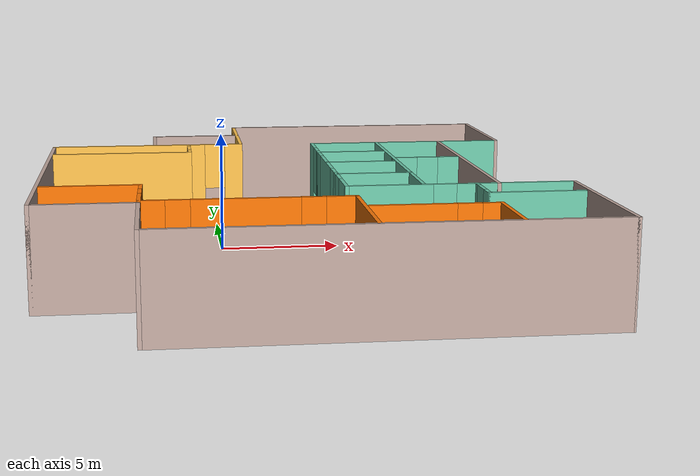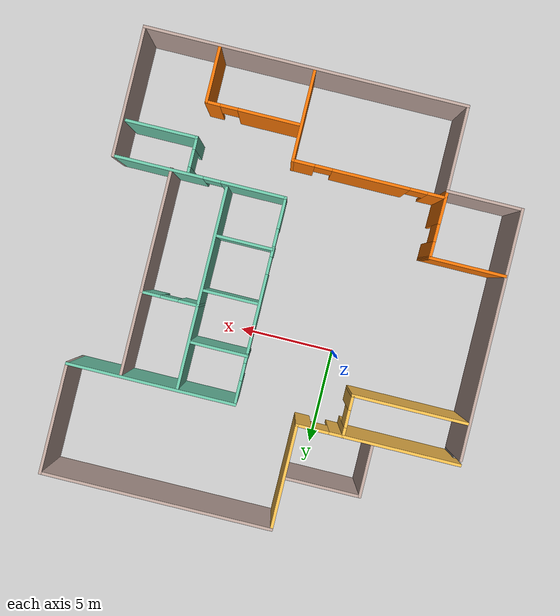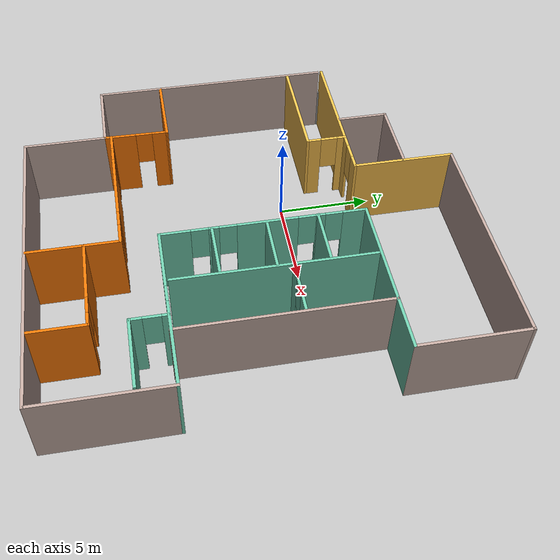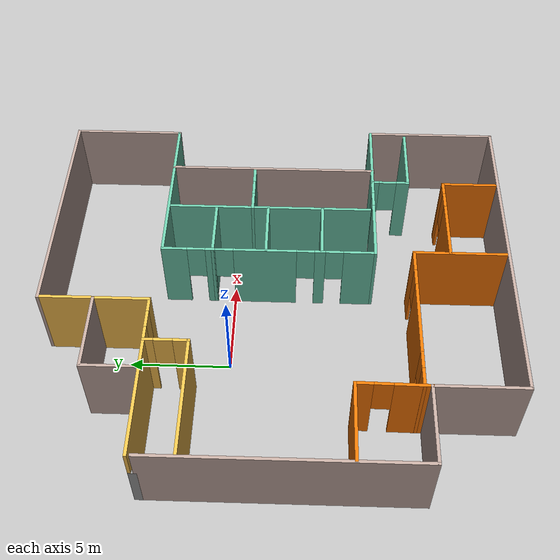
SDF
<?xml version='1.0'?>
<sdf version='1.6'>
  <model name='model'>
    <pose frame=''>2.952 -2.289 0 0 -0 0</pose>
    <link name='Wall_10'>
      <collision name='Wall_10_Collision'>
        <geometry>
          <box>
            <size>16.75 0.15 4</size>
          </box>
        </geometry>
        <pose frame=''>0 0 2 0 -0 0</pose>
      </collision>
      <visual name='Wall_10_Visual'>
        <pose frame=''>0 0 2 0 -0 0</pose>
        <geometry>
          <box>
            <size>16.75 0.15 4</size>
          </box>
        </geometry>
        <material>
          <script>
            <uri>file://media/materials/scripts/gazebo.material</uri>
            <name>Gazebo/Grey</name>
          </script>
          <ambient>0.760784 0.662745 0.627451 1</ambient>
        </material>
        <meta>
          <layer>0</layer>
        </meta>
      </visual>
      <pose frame=''>1.925 -11.4 0 0 -0 0</pose>
    </link>
    <link name='Wall_11'>
      <collision name='Wall_11_Collision'>
        <geometry>
          <box>
            <size>6.75 0.15 4</size>
          </box>
        </geometry>
        <pose frame=''>0 0 2 0 -0 0</pose>
      </collision>
      <visual name='Wall_11_Visual'>
        <pose frame=''>0 0 2 0 -0 0</pose>
        <geometry>
          <box>
            <size>6.75 0.15 4</size>
          </box>
        </geometry>
        <material>
          <script>
            <uri>file://media/materials/scripts/gazebo.material</uri>
            <name>Gazebo/Grey</name>
          </script>
          <ambient>0.760784 0.662745 0.627451 1</ambient>
        </material>
        <meta>
          <layer>0</layer>
        </meta>
      </visual>
      <pose frame=''>10.225 -8.1 0 0 -0 1.5708</pose>
    </link>
    <link name='Wall_12'>
      <pose frame=''>5.8 -4.8 0 0 -0 3.14159</pose>
      <visual name='Wall_12_Visual_0'>
        <pose frame=''>-2.14675 0 2 0 -0 0</pose>
        <geometry>
          <box>
            <size>4.70651 0.15 4</size>
          </box>
        </geometry>
        <material>
          <script>
            <uri>file://media/materials/scripts/gazebo.material</uri>
            <name>Gazebo/Grey</name>
          </script>
          <ambient>0.435294 0.796078 0.67451 1</ambient>
        </material>
        <meta>
          <layer>0</layer>
        </meta>
      </visual>
      <collision name='Wall_12_Collision_0'>
        <geometry>
          <box>
            <size>4.70651 0.15 4</size>
          </box>
        </geometry>
        <pose frame=''>-2.14675 0 2 0 -0 0</pose>
      </collision>
      <visual name='Wall_12_Visual_1'>
        <pose frame=''>2.80325 0 2 0 -0 0</pose>
        <geometry>
          <box>
            <size>3.39349 0.15 4</size>
          </box>
        </geometry>
        <material>
          <script>
            <uri>file://media/materials/scripts/gazebo.material</uri>
            <name>Gazebo/Grey</name>
          </script>
          <ambient>0.435294 0.796078 0.67451 1</ambient>
        </material>
        <meta>
          <layer>0</layer>
        </meta>
      </visual>
      <collision name='Wall_12_Collision_1'>
        <geometry>
          <box>
            <size>3.39349 0.15 4</size>
          </box>
        </geometry>
        <pose frame=''>2.80325 0 2 0 -0 0</pose>
      </collision>
      <visual name='Wall_12_Visual_2'>
        <pose frame=''>0.656507 0 3 0 -0 0</pose>
        <geometry>
          <box>
            <size>0.9 0.15 2</size>
          </box>
        </geometry>
        <material>
          <script>
            <uri>file://media/materials/scripts/gazebo.material</uri>
            <name>Gazebo/Grey</name>
          </script>
          <ambient>0.435294 0.796078 0.67451 1</ambient>
        </material>
        <meta>
          <layer>0</layer>
        </meta>
      </visual>
      <collision name='Wall_12_Collision_2'>
        <geometry>
          <box>
            <size>0.9 0.15 2</size>
          </box>
        </geometry>
        <pose frame=''>0.656507 0 3 0 -0 0</pose>
      </collision>
    </link>
    <link name='Wall_13'>
      <pose frame=''>1.375 0.5 0 0 -0 1.5708</pose>
      <visual name='Wall_13_Visual_0'>
        <pose frame=''>-4.54587 0 2 0 -0 0</pose>
        <geometry>
          <box>
            <size>1.65826 0.15 4</size>
          </box>
        </geometry>
        <material>
          <script>
            <uri>file://media/materials/scripts/gazebo.material</uri>
            <name>Gazebo/Grey</name>
          </script>
          <ambient>0.435294 0.796078 0.67451 1</ambient>
        </material>
        <meta>
          <layer>0</layer>
        </meta>
      </visual>
      <collision name='Wall_13_Collision_0'>
        <geometry>
          <box>
            <size>1.65826 0.15 4</size>
          </box>
        </geometry>
        <pose frame=''>-4.54587 0 2 0 -0 0</pose>
      </collision>
      <visual name='Wall_13_Visual_1'>
        <pose frame=''>-2.54891 0 2 0 -0 0</pose>
        <geometry>
          <box>
            <size>0.53565 0.15 4</size>
          </box>
        </geometry>
        <material>
          <script>
            <uri>file://media/materials/scripts/gazebo.material</uri>
            <name>Gazebo/Grey</name>
          </script>
          <ambient>0.435294 0.796078 0.67451 1</ambient>
        </material>
        <meta>
          <layer>0</layer>
        </meta>
      </visual>
      <collision name='Wall_13_Collision_1'>
        <geometry>
          <box>
            <size>0.53565 0.15 4</size>
          </box>
        </geometry>
        <pose frame=''>-2.54891 0 2 0 -0 0</pose>
      </collision>
      <visual name='Wall_13_Visual_2'>
        <pose frame=''>0.199333 0 2 0 -0 0</pose>
        <geometry>
          <box>
            <size>3.16084 0.15 4</size>
          </box>
        </geometry>
        <material>
          <script>
            <uri>file://media/materials/scripts/gazebo.material</uri>
            <name>Gazebo/Grey</name>
          </script>
          <ambient>0.435294 0.796078 0.67451 1</ambient>
        </material>
        <meta>
          <layer>0</layer>
        </meta>
      </visual>
      <collision name='Wall_13_Collision_2'>
        <geometry>
          <box>
            <size>3.16084 0.15 4</size>
          </box>
        </geometry>
        <pose frame=''>0.199333 0 2 0 -0 0</pose>
      </collision>
      <visual name='Wall_13_Visual_3'>
        <pose frame=''>2.92707 0 2 0 -0 0</pose>
        <geometry>
          <box>
            <size>0.494632 0.15 4</size>
          </box>
        </geometry>
        <material>
          <script>
            <uri>file://media/materials/scripts/gazebo.material</uri>
            <name>Gazebo/Grey</name>
          </script>
          <ambient>0.435294 0.796078 0.67451 1</ambient>
        </material>
        <meta>
          <layer>0</layer>
        </meta>
      </visual>
      <collision name='Wall_13_Collision_3'>
        <geometry>
          <box>
            <size>0.494632 0.15 4</size>
          </box>
        </geometry>
        <pose frame=''>2.92707 0 2 0 -0 0</pose>
      </collision>
      <visual name='Wall_13_Visual_4'>
        <pose frame=''>4.72469 0 2 0 -0 0</pose>
        <geometry>
          <box>
            <size>1.30062 0.15 4</size>
          </box>
        </geometry>
        <material>
          <script>
            <uri>file://media/materials/scripts/gazebo.material</uri>
            <name>Gazebo/Grey</name>
          </script>
          <ambient>0.435294 0.796078 0.67451 1</ambient>
        </material>
        <meta>
          <layer>0</layer>
        </meta>
      </visual>
      <collision name='Wall_13_Collision_4'>
        <geometry>
          <box>
            <size>1.30062 0.15 4</size>
          </box>
        </geometry>
        <pose frame=''>4.72469 0 2 0 -0 0</pose>
      </collision>
      <visual name='Wall_13_Visual_5'>
        <pose frame=''>-3.26674 0 3 0 -0 0</pose>
        <geometry>
          <box>
            <size>0.9 0.15 2</size>
          </box>
        </geometry>
        <material>
          <script>
            <uri>file://media/materials/scripts/gazebo.material</uri>
            <name>Gazebo/Grey</name>
          </script>
          <ambient>0.435294 0.796078 0.67451 1</ambient>
        </material>
        <meta>
          <layer>0</layer>
        </meta>
      </visual>
      <collision name='Wall_13_Collision_5'>
        <geometry>
          <box>
            <size>0.9 0.15 2</size>
          </box>
        </geometry>
        <pose frame=''>-3.26674 0 3 0 -0 0</pose>
      </collision>
      <visual name='Wall_13_Visual_6'>
        <pose frame=''>-1.83109 0 3 0 -0 0</pose>
        <geometry>
          <box>
            <size>0.9 0.15 2</size>
          </box>
        </geometry>
        <material>
          <script>
            <uri>file://media/materials/scripts/gazebo.material</uri>
            <name>Gazebo/Grey</name>
          </script>
          <ambient>0.435294 0.796078 0.67451 1</ambient>
        </material>
        <meta>
          <layer>0</layer>
        </meta>
      </visual>
      <collision name='Wall_13_Collision_6'>
        <geometry>
          <box>
            <size>0.9 0.15 2</size>
          </box>
        </geometry>
        <pose frame=''>-1.83109 0 3 0 -0 0</pose>
      </collision>
      <visual name='Wall_13_Visual_7'>
        <pose frame=''>2.22975 0 3 0 -0 0</pose>
        <geometry>
          <box>
            <size>0.9 0.15 2</size>
          </box>
        </geometry>
        <material>
          <script>
            <uri>file://media/materials/scripts/gazebo.material</uri>
            <name>Gazebo/Grey</name>
          </script>
          <ambient>0.435294 0.796078 0.67451 1</ambient>
        </material>
        <meta>
          <layer>0</layer>
        </meta>
      </visual>
      <collision name='Wall_13_Collision_7'>
        <geometry>
          <box>
            <size>0.9 0.15 2</size>
          </box>
        </geometry>
        <pose frame=''>2.22975 0 3 0 -0 0</pose>
      </collision>
      <visual name='Wall_13_Visual_8'>
        <pose frame=''>3.62439 0 3 0 -0 0</pose>
        <geometry>
          <box>
            <size>0.9 0.15 2</size>
          </box>
        </geometry>
        <material>
          <script>
            <uri>file://media/materials/scripts/gazebo.material</uri>
            <name>Gazebo/Grey</name>
          </script>
          <ambient>0.435294 0.796078 0.67451 1</ambient>
        </material>
        <meta>
          <layer>0</layer>
        </meta>
      </visual>
      <collision name='Wall_13_Collision_8'>
        <geometry>
          <box>
            <size>0.9 0.15 2</size>
          </box>
        </geometry>
        <pose frame=''>3.62439 0 3 0 -0 0</pose>
      </collision>
    </link>
    <link name='Wall_14'>
      <collision name='Wall_14_Collision'>
        <geometry>
          <box>
            <size>8.75 0.15 4</size>
          </box>
        </geometry>
        <pose frame=''>0 0 2 0 -0 0</pose>
      </collision>
      <visual name='Wall_14_Visual'>
        <pose frame=''>0 0 2 0 -0 0</pose>
        <geometry>
          <box>
            <size>8.75 0.15 4</size>
          </box>
        </geometry>
        <material>
          <script>
            <uri>file://media/materials/scripts/gazebo.material</uri>
            <name>Gazebo/Grey</name>
          </script>
          <ambient>0.435294 0.796078 0.67451 1</ambient>
        </material>
        <meta>
          <layer>0</layer>
        </meta>
      </visual>
      <pose frame=''>5.675 5.8 0 0 -0 0</pose>
    </link>
    <link name='Wall_15'>
      <collision name='Wall_15_Collision'>
        <geometry>
          <box>
            <size>5.75 0.15 4</size>
          </box>
        </geometry>
        <pose frame=''>0 0 2 0 -0 0</pose>
      </collision>
      <visual name='Wall_15_Visual'>
        <pose frame=''>0 0 2 0 -0 0</pose>
        <geometry>
          <box>
            <size>5.75 0.15 4</size>
          </box>
        </geometry>
        <material>
          <script>
            <uri>file://media/materials/scripts/gazebo.material</uri>
            <name>Gazebo/Grey</name>
          </script>
          <ambient>0.760784 0.662745 0.627451 1</ambient>
        </material>
        <meta>
          <layer>0</layer>
        </meta>
      </visual>
      <pose frame=''>9.975 8.6 0 0 -0 1.5708</pose>
    </link>
    <link name='Wall_16'>
      <collision name='Wall_16_Collision'>
        <geometry>
          <box>
            <size>12 0.15 4</size>
          </box>
        </geometry>
        <pose frame=''>0 0 2 0 -0 0</pose>
      </collision>
      <visual name='Wall_16_Visual'>
        <pose frame=''>0 0 2 0 -0 0</pose>
        <geometry>
          <box>
            <size>12 0.15 4</size>
          </box>
        </geometry>
        <material>
          <script>
            <uri>file://media/materials/scripts/gazebo.material</uri>
            <name>Gazebo/Grey</name>
          </script>
          <ambient>0.760784 0.662745 0.627451 1</ambient>
        </material>
        <meta>
          <layer>0</layer>
        </meta>
      </visual>
      <pose frame=''>4.05 11.4 0 0 -0 3.14159</pose>
    </link>
    <link name='Wall_17'>
      <collision name='Wall_17_Collision'>
        <geometry>
          <box>
            <size>5.5 0.15 4</size>
          </box>
        </geometry>
        <pose frame=''>0 0 2 0 -0 0</pose>
      </collision>
      <visual name='Wall_17_Visual'>
        <pose frame=''>0 0 2 0 -0 0</pose>
        <geometry>
          <box>
            <size>5.5 0.15 4</size>
          </box>
        </geometry>
        <material>
          <script>
            <uri>file://media/materials/scripts/gazebo.material</uri>
            <name>Gazebo/Grey</name>
          </script>
          <ambient>1 0.764706 0.305882 1</ambient>
        </material>
        <meta>
          <layer>0</layer>
        </meta>
      </visual>
      <pose frame=''>-1.875 8.725 0 0 0 -1.5708</pose>
    </link>
    <link name='Wall_18'>
      <pose frame=''>-6.05 6.05 0 0 -0 3.14159</pose>
      <visual name='Wall_18_Visual_0'>
        <pose frame=''>-3.84489 0 2 0 -0 0</pose>
        <geometry>
          <box>
            <size>0.810225 0.15 4</size>
          </box>
        </geometry>
        <material>
          <script>
            <uri>file://media/materials/scripts/gazebo.material</uri>
            <name>Gazebo/Grey</name>
          </script>
          <ambient>1 0.764706 0.305882 1</ambient>
        </material>
        <meta>
          <layer>0</layer>
        </meta>
      </visual>
      <collision name='Wall_18_Collision_0'>
        <geometry>
          <box>
            <size>0.810225 0.15 4</size>
          </box>
        </geometry>
        <pose frame=''>-3.84489 0 2 0 -0 0</pose>
      </collision>
      <visual name='Wall_18_Visual_1'>
        <pose frame=''>0.855112 0 2 0 -0 0</pose>
        <geometry>
          <box>
            <size>6.78977 0.15 4</size>
          </box>
        </geometry>
        <material>
          <script>
            <uri>file://media/materials/scripts/gazebo.material</uri>
            <name>Gazebo/Grey</name>
          </script>
          <ambient>1 0.764706 0.305882 1</ambient>
        </material>
        <meta>
          <layer>0</layer>
        </meta>
      </visual>
      <collision name='Wall_18_Collision_1'>
        <geometry>
          <box>
            <size>6.78977 0.15 4</size>
          </box>
        </geometry>
        <pose frame=''>0.855112 0 2 0 -0 0</pose>
      </collision>
      <visual name='Wall_18_Visual_2'>
        <pose frame=''>-2.98977 0 3 0 -0 0</pose>
        <geometry>
          <box>
            <size>0.9 0.15 2</size>
          </box>
        </geometry>
        <material>
          <script>
            <uri>file://media/materials/scripts/gazebo.material</uri>
            <name>Gazebo/Grey</name>
          </script>
          <ambient>1 0.764706 0.305882 1</ambient>
        </material>
        <meta>
          <layer>0</layer>
        </meta>
      </visual>
      <collision name='Wall_18_Collision_2'>
        <geometry>
          <box>
            <size>0.9 0.15 2</size>
          </box>
        </geometry>
        <pose frame=''>-2.98977 0 3 0 -0 0</pose>
      </collision>
    </link>
    <link name='Wall_19'>
      <collision name='Wall_19_Collision'>
        <geometry>
          <box>
            <size>0.4 0.15 2.5</size>
          </box>
        </geometry>
        <pose frame=''>0 0 1.25 0 -0 0</pose>
      </collision>
      <visual name='Wall_19_Visual'>
        <pose frame=''>0 0 1.25 0 -0 0</pose>
        <geometry>
          <box>
            <size>0.4 0.15 2.5</size>
          </box>
        </geometry>
        <material>
          <script>
            <uri>file://media/materials/scripts/gazebo.material</uri>
            <name>Gazebo/Grey</name>
          </script>
          <ambient>1 1 1 1</ambient>
        </material>
        <meta>
          <layer>0</layer>
        </meta>
      </visual>
      <pose frame=''>-10.225 5.925 0 0 0 -1.5708</pose>
    </link>
    <link name='Wall_21'>
      <collision name='Wall_21_Collision'>
        <geometry>
          <box>
            <size>2.75 0.15 4</size>
          </box>
        </geometry>
        <pose frame=''>0 0 2 0 -0 0</pose>
      </collision>
      <visual name='Wall_21_Visual'>
        <pose frame=''>0 0 2 0 -0 0</pose>
        <geometry>
          <box>
            <size>2.75 0.15 4</size>
          </box>
        </geometry>
        <material>
          <script>
            <uri>file://media/materials/scripts/gazebo.material</uri>
            <name>Gazebo/Grey</name>
          </script>
          <ambient>0.760784 0.662745 0.627451 1</ambient>
        </material>
        <meta>
          <layer>0</layer>
        </meta>
      </visual>
      <pose frame=''>-5.759 7.448 0 0 -0 1.5708</pose>
    </link>
    <link name='Wall_22'>
      <collision name='Wall_22_Collision'>
        <geometry>
          <box>
            <size>4 0.15 4</size>
          </box>
        </geometry>
        <pose frame=''>0 0 2 0 -0 0</pose>
      </collision>
      <visual name='Wall_22_Visual'>
        <pose frame=''>0 0 2 0 -0 0</pose>
        <geometry>
          <box>
            <size>4 0.15 4</size>
          </box>
        </geometry>
        <material>
          <script>
            <uri>file://media/materials/scripts/gazebo.material</uri>
            <name>Gazebo/Grey</name>
          </script>
          <ambient>0.760784 0.662745 0.627451 1</ambient>
        </material>
        <meta>
          <layer>0</layer>
        </meta>
      </visual>
      <pose frame=''>-3.834 8.748 0 0 -0 0</pose>
    </link>
    <link name='Wall_25'>
      <pose frame=''>-4.241 5.004 0 0 0 -1.5708</pose>
      <visual name='Wall_25_Visual_0'>
        <pose frame=''>-0.860425 0 2 0 -0 0</pose>
        <geometry>
          <box>
            <size>0.529151 0.15 4</size>
          </box>
        </geometry>
        <material>
          <script>
            <uri>file://media/materials/scripts/gazebo.material</uri>
            <name>Gazebo/Grey</name>
          </script>
          <ambient>1 0.764706 0.305882 1</ambient>
        </material>
        <meta>
          <layer>0</layer>
        </meta>
      </visual>
      <collision name='Wall_25_Collision_0'>
        <geometry>
          <box>
            <size>0.529151 0.15 4</size>
          </box>
        </geometry>
        <pose frame=''>-0.860425 0 2 0 -0 0</pose>
      </collision>
      <visual name='Wall_25_Visual_1'>
        <pose frame=''>0.714575 0 2 0 -0 0</pose>
        <geometry>
          <box>
            <size>0.820849 0.15 4</size>
          </box>
        </geometry>
        <material>
          <script>
            <uri>file://media/materials/scripts/gazebo.material</uri>
            <name>Gazebo/Grey</name>
          </script>
          <ambient>1 0.764706 0.305882 1</ambient>
        </material>
        <meta>
          <layer>0</layer>
        </meta>
      </visual>
      <collision name='Wall_25_Collision_1'>
        <geometry>
          <box>
            <size>0.820849 0.15 4</size>
          </box>
        </geometry>
        <pose frame=''>0.714575 0 2 0 -0 0</pose>
      </collision>
      <visual name='Wall_25_Visual_2'>
        <pose frame=''>-0.145849 0 3 0 -0 0</pose>
        <geometry>
          <box>
            <size>0.9 0.15 2</size>
          </box>
        </geometry>
        <material>
          <script>
            <uri>file://media/materials/scripts/gazebo.material</uri>
            <name>Gazebo/Grey</name>
          </script>
          <ambient>1 0.764706 0.305882 1</ambient>
        </material>
        <meta>
          <layer>0</layer>
        </meta>
      </visual>
      <collision name='Wall_25_Collision_2'>
        <geometry>
          <box>
            <size>0.9 0.15 2</size>
          </box>
        </geometry>
        <pose frame=''>-0.145849 0 3 0 -0 0</pose>
      </collision>
    </link>
    <link name='Wall_26'>
      <collision name='Wall_26_Collision'>
        <geometry>
          <box>
            <size>6 0.15 4</size>
          </box>
        </geometry>
        <pose frame=''>0 0 2 0 -0 0</pose>
      </collision>
      <visual name='Wall_26_Visual'>
        <pose frame=''>0 0 2 0 -0 0</pose>
        <geometry>
          <box>
            <size>6 0.15 4</size>
          </box>
        </geometry>
        <material>
          <script>
            <uri>file://media/materials/scripts/gazebo.material</uri>
            <name>Gazebo/Grey</name>
          </script>
          <ambient>1 0.764706 0.305882 1</ambient>
        </material>
        <meta>
          <layer>0</layer>
        </meta>
      </visual>
      <pose frame=''>-7.166 3.954 0 0 -0 3.14159</pose>
    </link>
    <link name='Wall_28'>
      <collision name='Wall_28_Collision'>
        <geometry>
          <box>
            <size>10.5 0.15 4</size>
          </box>
        </geometry>
        <pose frame=''>0 0 2 0 -0 0</pose>
      </collision>
      <visual name='Wall_28_Visual'>
        <pose frame=''>0 0 2 0 -0 0</pose>
        <geometry>
          <box>
            <size>10.5 0.15 4</size>
          </box>
        </geometry>
        <material>
          <script>
            <uri>file://media/materials/scripts/gazebo.material</uri>
            <name>Gazebo/Grey</name>
          </script>
          <ambient>0.435294 0.796078 0.67451 1</ambient>
        </material>
        <meta>
          <layer>0</layer>
        </meta>
      </visual>
      <pose frame=''>4.346 0.594 0 0 0 -1.5708</pose>
    </link>
    <link name='Wall_30'>
      <collision name='Wall_30_Collision'>
        <geometry>
          <box>
            <size>3 0.15 4</size>
          </box>
        </geometry>
        <pose frame=''>0 0 2 0 -0 0</pose>
      </collision>
      <visual name='Wall_30_Visual'>
        <pose frame=''>0 0 2 0 -0 0</pose>
        <geometry>
          <box>
            <size>3 0.15 4</size>
          </box>
        </geometry>
        <material>
          <script>
            <uri>file://media/materials/scripts/gazebo.material</uri>
            <name>Gazebo/Grey</name>
          </script>
          <ambient>0.435294 0.796078 0.67451 1</ambient>
        </material>
        <meta>
          <layer>0</layer>
        </meta>
      </visual>
      <pose frame=''>2.829 0.645 0 0 -0 0</pose>
    </link>
    <link name='Wall_32'>
      <collision name='Wall_32_Collision'>
        <geometry>
          <box>
            <size>3 0.15 4</size>
          </box>
        </geometry>
        <pose frame=''>0 0 2 0 -0 0</pose>
      </collision>
      <visual name='Wall_32_Visual'>
        <pose frame=''>0 0 2 0 -0 0</pose>
        <geometry>
          <box>
            <size>3 0.15 4</size>
          </box>
        </geometry>
        <material>
          <script>
            <uri>file://media/materials/scripts/gazebo.material</uri>
            <name>Gazebo/Grey</name>
          </script>
          <ambient>0.435294 0.796078 0.67451 1</ambient>
        </material>
        <meta>
          <layer>0</layer>
        </meta>
      </visual>
      <pose frame=''>2.782 3.302 0 0 -0 0</pose>
    </link>
    <link name='Wall_34'>
      <collision name='Wall_34_Collision'>
        <geometry>
          <box>
            <size>3 0.15 4</size>
          </box>
        </geometry>
        <pose frame=''>0 0 2 0 -0 0</pose>
      </collision>
      <visual name='Wall_34_Visual'>
        <pose frame=''>0 0 2 0 -0 0</pose>
        <geometry>
          <box>
            <size>3 0.15 4</size>
          </box>
        </geometry>
        <material>
          <script>
            <uri>file://media/materials/scripts/gazebo.material</uri>
            <name>Gazebo/Grey</name>
          </script>
          <ambient>0.435294 0.796078 0.67451 1</ambient>
        </material>
        <meta>
          <layer>0</layer>
        </meta>
      </visual>
      <pose frame=''>2.877 -2.153 0 0 -0 0</pose>
    </link>
    <link name='Wall_36'>
      <collision name='Wall_36_Collision'>
        <geometry>
          <box>
            <size>10.75 0.15 4</size>
          </box>
        </geometry>
        <pose frame=''>0 0 2 0 -0 0</pose>
      </collision>
      <visual name='Wall_36_Visual'>
        <pose frame=''>0 0 2 0 -0 0</pose>
        <geometry>
          <box>
            <size>10.75 0.15 4</size>
          </box>
        </geometry>
        <material>
          <script>
            <uri>file://media/materials/scripts/gazebo.material</uri>
            <name>Gazebo/Grey</name>
          </script>
          <ambient>0.760784 0.662745 0.627451 1</ambient>
        </material>
        <meta>
          <layer>0</layer>
        </meta>
      </visual>
      <pose frame=''>7.24 0.469 0 0 0 -1.5708</pose>
    </link>
    <link name='Wall_38'>
      <pose frame=''>5.771 1.452 0 0 -0 0</pose>
      <visual name='Wall_38_Visual_0'>
        <pose frame=''>-0.960605 0 2 0 -0 0</pose>
        <geometry>
          <box>
            <size>1.07879 0.15 4</size>
          </box>
        </geometry>
        <material>
          <script>
            <uri>file://media/materials/scripts/gazebo.material</uri>
            <name>Gazebo/Grey</name>
          </script>
          <ambient>0.435294 0.796078 0.67451 1</ambient>
        </material>
        <meta>
          <layer>0</layer>
        </meta>
      </visual>
      <collision name='Wall_38_Collision_0'>
        <geometry>
          <box>
            <size>1.07879 0.15 4</size>
          </box>
        </geometry>
        <pose frame=''>-0.960605 0 2 0 -0 0</pose>
      </collision>
      <visual name='Wall_38_Visual_1'>
        <pose frame=''>0.989395 0 2 0 -0 0</pose>
        <geometry>
          <box>
            <size>1.02121 0.15 4</size>
          </box>
        </geometry>
        <material>
          <script>
            <uri>file://media/materials/scripts/gazebo.material</uri>
            <name>Gazebo/Grey</name>
          </script>
          <ambient>0.435294 0.796078 0.67451 1</ambient>
        </material>
        <meta>
          <layer>0</layer>
        </meta>
      </visual>
      <collision name='Wall_38_Collision_1'>
        <geometry>
          <box>
            <size>1.02121 0.15 4</size>
          </box>
        </geometry>
        <pose frame=''>0.989395 0 2 0 -0 0</pose>
      </collision>
      <visual name='Wall_38_Visual_2'>
        <pose frame=''>0.02879 0 3 0 -0 0</pose>
        <geometry>
          <box>
            <size>0.9 0.15 2</size>
          </box>
        </geometry>
        <material>
          <script>
            <uri>file://media/materials/scripts/gazebo.material</uri>
            <name>Gazebo/Grey</name>
          </script>
          <ambient>0.435294 0.796078 0.67451 1</ambient>
        </material>
        <meta>
          <layer>0</layer>
        </meta>
      </visual>
      <collision name='Wall_38_Collision_2'>
        <geometry>
          <box>
            <size>0.9 0.15 2</size>
          </box>
        </geometry>
        <pose frame=''>0.02879 0 3 0 -0 0</pose>
      </collision>
    </link>
    <link name='Wall_40'>
      <collision name='Wall_40_Collision'>
        <geometry>
          <box>
            <size>4 0.15 4</size>
          </box>
        </geometry>
        <pose frame=''>0 0 2 0 -0 0</pose>
      </collision>
      <visual name='Wall_40_Visual'>
        <pose frame=''>0 0 2 0 -0 0</pose>
        <geometry>
          <box>
            <size>4 0.15 4</size>
          </box>
        </geometry>
        <material>
          <script>
            <uri>file://media/materials/scripts/gazebo.material</uri>
            <name>Gazebo/Grey</name>
          </script>
          <ambient>0.996078 0.47451 0.0196078 1</ambient>
        </material>
        <meta>
          <layer>0</layer>
        </meta>
      </visual>
      <pose frame=''>-8.246 -3.624 0 0 -0 0</pose>
    </link>
    <link name='Wall_41'>
      <pose frame=''>-6.348 -5.337 0 0 0 -1.58656</pose>
      <visual name='Wall_41_Visual_0'>
        <pose frame=''>-1.33557 0 2 0 -0 0</pose>
        <geometry>
          <box>
            <size>0.905514 0.15 4</size>
          </box>
        </geometry>
        <material>
          <script>
            <uri>file://media/materials/scripts/gazebo.material</uri>
            <name>Gazebo/Grey</name>
          </script>
          <ambient>0.996078 0.47451 0.0196078 1</ambient>
        </material>
        <meta>
          <layer>0</layer>
        </meta>
      </visual>
      <collision name='Wall_41_Collision_0'>
        <geometry>
          <box>
            <size>0.905514 0.15 4</size>
          </box>
        </geometry>
        <pose frame=''>-1.33557 0 2 0 -0 0</pose>
      </collision>
      <visual name='Wall_41_Visual_1'>
        <pose frame=''>0.902757 0 2 0 -0 0</pose>
        <geometry>
          <box>
            <size>1.77114 0.15 4</size>
          </box>
        </geometry>
        <material>
          <script>
            <uri>file://media/materials/scripts/gazebo.material</uri>
            <name>Gazebo/Grey</name>
          </script>
          <ambient>0.996078 0.47451 0.0196078 1</ambient>
        </material>
        <meta>
          <layer>0</layer>
        </meta>
      </visual>
      <collision name='Wall_41_Collision_1'>
        <geometry>
          <box>
            <size>1.77114 0.15 4</size>
          </box>
        </geometry>
        <pose frame=''>0.902757 0 2 0 -0 0</pose>
      </collision>
      <visual name='Wall_41_Visual_2'>
        <pose frame=''>-0.432815 0 3 0 -0 0</pose>
        <geometry>
          <box>
            <size>0.9 0.15 2</size>
          </box>
        </geometry>
        <material>
          <script>
            <uri>file://media/materials/scripts/gazebo.material</uri>
            <name>Gazebo/Grey</name>
          </script>
          <ambient>0.996078 0.47451 0.0196078 1</ambient>
        </material>
        <meta>
          <layer>0</layer>
        </meta>
      </visual>
      <collision name='Wall_41_Collision_2'>
        <geometry>
          <box>
            <size>0.9 0.15 2</size>
          </box>
        </geometry>
        <pose frame=''>-0.432815 0 3 0 -0 0</pose>
      </collision>
    </link>
    <link name='Wall_43'>
      <pose frame=''>6.386 -5.735 0 0 0 -1.5708</pose>
      <visual name='Wall_43_Visual_0'>
        <pose frame=''>-0.79399 0 2 0 -0 0</pose>
        <geometry>
          <box>
            <size>0.41202 0.15 4</size>
          </box>
        </geometry>
        <material>
          <script>
            <uri>file://media/materials/scripts/gazebo.material</uri>
            <name>Gazebo/Grey</name>
          </script>
          <ambient>0.435294 0.796078 0.67451 1</ambient>
        </material>
        <meta>
          <layer>0</layer>
        </meta>
      </visual>
      <collision name='Wall_43_Collision_0'>
        <geometry>
          <box>
            <size>0.41202 0.15 4</size>
          </box>
        </geometry>
        <pose frame=''>-0.79399 0 2 0 -0 0</pose>
      </collision>
      <visual name='Wall_43_Visual_1'>
        <pose frame=''>0.65601 0 2 0 -0 0</pose>
        <geometry>
          <box>
            <size>0.68798 0.15 4</size>
          </box>
        </geometry>
        <material>
          <script>
            <uri>file://media/materials/scripts/gazebo.material</uri>
            <name>Gazebo/Grey</name>
          </script>
          <ambient>0.435294 0.796078 0.67451 1</ambient>
        </material>
        <meta>
          <layer>0</layer>
        </meta>
      </visual>
      <collision name='Wall_43_Collision_1'>
        <geometry>
          <box>
            <size>0.68798 0.15 4</size>
          </box>
        </geometry>
        <pose frame=''>0.65601 0 2 0 -0 0</pose>
      </collision>
      <visual name='Wall_43_Visual_2'>
        <pose frame=''>-0.13798 0 3 0 -0 0</pose>
        <geometry>
          <box>
            <size>0.9 0.15 2</size>
          </box>
        </geometry>
        <material>
          <script>
            <uri>file://media/materials/scripts/gazebo.material</uri>
            <name>Gazebo/Grey</name>
          </script>
          <ambient>0.435294 0.796078 0.67451 1</ambient>
        </material>
        <meta>
          <layer>0</layer>
        </meta>
      </visual>
      <collision name='Wall_43_Collision_2'>
        <geometry>
          <box>
            <size>0.9 0.15 2</size>
          </box>
        </geometry>
        <pose frame=''>-0.13798 0 3 0 -0 0</pose>
      </collision>
    </link>
    <link name='Wall_44'>
      <collision name='Wall_44_Collision'>
        <geometry>
          <box>
            <size>3.75 0.15 4</size>
          </box>
        </geometry>
        <pose frame=''>0 0 2 0 -0 0</pose>
      </collision>
      <visual name='Wall_44_Visual'>
        <pose frame=''>0 0 2 0 -0 0</pose>
        <geometry>
          <box>
            <size>3.75 0.15 4</size>
          </box>
        </geometry>
        <material>
          <script>
            <uri>file://media/materials/scripts/gazebo.material</uri>
            <name>Gazebo/Grey</name>
          </script>
          <ambient>0.435294 0.796078 0.67451 1</ambient>
        </material>
        <meta>
          <layer>0</layer>
        </meta>
      </visual>
      <pose frame=''>8.186 -6.66 0 0 -0 0</pose>
    </link>
    <link name='Wall_47'>
      <pose frame=''>-2.451 -6.708 0 0 -0 0</pose>
      <visual name='Wall_47_Visual_0'>
        <pose frame=''>-3.49355 0 2 0 -0 0</pose>
        <geometry>
          <box>
            <size>1.0129 0.15 4</size>
          </box>
        </geometry>
        <material>
          <script>
            <uri>file://media/materials/scripts/gazebo.material</uri>
            <name>Gazebo/Grey</name>
          </script>
          <ambient>0.996078 0.47451 0.0196078 1</ambient>
        </material>
        <meta>
          <layer>0</layer>
        </meta>
      </visual>
      <collision name='Wall_47_Collision_0'>
        <geometry>
          <box>
            <size>1.0129 0.15 4</size>
          </box>
        </geometry>
        <pose frame=''>-3.49355 0 2 0 -0 0</pose>
      </collision>
      <visual name='Wall_47_Visual_1'>
        <pose frame=''>-0.096492 0 2 0 -0 0</pose>
        <geometry>
          <box>
            <size>3.98121 0.15 4</size>
          </box>
        </geometry>
        <material>
          <script>
            <uri>file://media/materials/scripts/gazebo.material</uri>
            <name>Gazebo/Grey</name>
          </script>
          <ambient>0.996078 0.47451 0.0196078 1</ambient>
        </material>
        <meta>
          <layer>0</layer>
        </meta>
      </visual>
      <collision name='Wall_47_Collision_1'>
        <geometry>
          <box>
            <size>3.98121 0.15 4</size>
          </box>
        </geometry>
        <pose frame=''>-0.096492 0 2 0 -0 0</pose>
      </collision>
      <visual name='Wall_47_Visual_2'>
        <pose frame=''>3.39706 0 2 0 -0 0</pose>
        <geometry>
          <box>
            <size>1.20589 0.15 4</size>
          </box>
        </geometry>
        <material>
          <script>
            <uri>file://media/materials/scripts/gazebo.material</uri>
            <name>Gazebo/Grey</name>
          </script>
          <ambient>0.996078 0.47451 0.0196078 1</ambient>
        </material>
        <meta>
          <layer>0</layer>
        </meta>
      </visual>
      <collision name='Wall_47_Collision_2'>
        <geometry>
          <box>
            <size>1.20589 0.15 4</size>
          </box>
        </geometry>
        <pose frame=''>3.39706 0 2 0 -0 0</pose>
      </collision>
      <visual name='Wall_47_Visual_3'>
        <pose frame=''>-2.5371 0 3 0 -0 0</pose>
        <geometry>
          <box>
            <size>0.9 0.15 2</size>
          </box>
        </geometry>
        <material>
          <script>
            <uri>file://media/materials/scripts/gazebo.material</uri>
            <name>Gazebo/Grey</name>
          </script>
          <ambient>0.996078 0.47451 0.0196078 1</ambient>
        </material>
        <meta>
          <layer>0</layer>
        </meta>
      </visual>
      <collision name='Wall_47_Collision_3'>
        <geometry>
          <box>
            <size>0.9 0.15 2</size>
          </box>
        </geometry>
        <pose frame=''>-2.5371 0 3 0 -0 0</pose>
      </collision>
      <visual name='Wall_47_Visual_4'>
        <pose frame=''>2.34411 0 3 0 -0 0</pose>
        <geometry>
          <box>
            <size>0.9 0.15 2</size>
          </box>
        </geometry>
        <material>
          <script>
            <uri>file://media/materials/scripts/gazebo.material</uri>
            <name>Gazebo/Grey</name>
          </script>
          <ambient>0.996078 0.47451 0.0196078 1</ambient>
        </material>
        <meta>
          <layer>0</layer>
        </meta>
      </visual>
      <collision name='Wall_47_Collision_4'>
        <geometry>
          <box>
            <size>0.9 0.15 2</size>
          </box>
        </geometry>
        <pose frame=''>2.34411 0 3 0 -0 0</pose>
      </collision>
    </link>
    <link name='Wall_48'>
      <collision name='Wall_48_Collision'>
        <geometry>
          <box>
            <size>4.75 0.15 4</size>
          </box>
        </geometry>
        <pose frame=''>0 0 2 0 -0 0</pose>
      </collision>
      <visual name='Wall_48_Visual'>
        <pose frame=''>0 0 2 0 -0 0</pose>
        <geometry>
          <box>
            <size>4.75 0.15 4</size>
          </box>
        </geometry>
        <material>
          <script>
            <uri>file://media/materials/scripts/gazebo.material</uri>
            <name>Gazebo/Grey</name>
          </script>
          <ambient>0.996078 0.47451 0.0196078 1</ambient>
        </material>
        <meta>
          <layer>0</layer>
        </meta>
      </visual>
      <pose frame=''>1.474 -9.008 0 0 0 -1.5708</pose>
    </link>
    <link name='Wall_5'>
      <collision name='Wall_5_Collision'>
        <geometry>
          <box>
            <size>13 0.15 4</size>
          </box>
        </geometry>
        <pose frame=''>0 0 2 0 -0 0</pose>
      </collision>
      <visual name='Wall_5_Visual'>
        <pose frame=''>0 0 2 0 -0 0</pose>
        <geometry>
          <box>
            <size>13 0.15 4</size>
          </box>
        </geometry>
        <material>
          <script>
            <uri>file://media/materials/scripts/gazebo.material</uri>
            <name>Gazebo/Grey</name>
          </script>
          <ambient>0.760784 0.662745 0.627451 1</ambient>
        </material>
        <meta>
          <layer>0</layer>
        </meta>
      </visual>
      <pose frame=''>-10.225 -0.625 0 0 0 -1.5708</pose>
    </link>
    <link name='Wall_50'>
      <pose frame=''>3.924 -8.51 0 0 -0 0</pose>
      <visual name='Wall_50_Visual_0'>
        <pose frame=''>-0.844745 0 2 0 -0 0</pose>
        <geometry>
          <box>
            <size>3.31051 0.15 4</size>
          </box>
        </geometry>
        <material>
          <script>
            <uri>file://media/materials/scripts/gazebo.material</uri>
            <name>Gazebo/Grey</name>
          </script>
          <ambient>0.996078 0.47451 0.0196078 1</ambient>
        </material>
        <meta>
          <layer>0</layer>
        </meta>
      </visual>
      <collision name='Wall_50_Collision_0'>
        <geometry>
          <box>
            <size>3.31051 0.15 4</size>
          </box>
        </geometry>
        <pose frame=''>-0.844745 0 2 0 -0 0</pose>
      </collision>
      <visual name='Wall_50_Visual_1'>
        <pose frame=''>2.10526 0 2 0 -0 0</pose>
        <geometry>
          <box>
            <size>0.789489 0.15 4</size>
          </box>
        </geometry>
        <material>
          <script>
            <uri>file://media/materials/scripts/gazebo.material</uri>
            <name>Gazebo/Grey</name>
          </script>
          <ambient>0.996078 0.47451 0.0196078 1</ambient>
        </material>
        <meta>
          <layer>0</layer>
        </meta>
      </visual>
      <collision name='Wall_50_Collision_1'>
        <geometry>
          <box>
            <size>0.789489 0.15 4</size>
          </box>
        </geometry>
        <pose frame=''>2.10526 0 2 0 -0 0</pose>
      </collision>
      <visual name='Wall_50_Visual_2'>
        <pose frame=''>1.26051 0 3 0 -0 0</pose>
        <geometry>
          <box>
            <size>0.9 0.15 2</size>
          </box>
        </geometry>
        <material>
          <script>
            <uri>file://media/materials/scripts/gazebo.material</uri>
            <name>Gazebo/Grey</name>
          </script>
          <ambient>0.996078 0.47451 0.0196078 1</ambient>
        </material>
        <meta>
          <layer>0</layer>
        </meta>
      </visual>
      <collision name='Wall_50_Collision_2'>
        <geometry>
          <box>
            <size>0.9 0.15 2</size>
          </box>
        </geometry>
        <pose frame=''>1.26051 0 3 0 -0 0</pose>
      </collision>
    </link>
    <link name='Wall_51'>
      <collision name='Wall_51_Collision'>
        <geometry>
          <box>
            <size>3 0.15 4</size>
          </box>
        </geometry>
        <pose frame=''>0 0 2 0 -0 0</pose>
      </collision>
      <visual name='Wall_51_Visual'>
        <pose frame=''>0 0 2 0 -0 0</pose>
        <geometry>
          <box>
            <size>3 0.15 4</size>
          </box>
        </geometry>
        <material>
          <script>
            <uri>file://media/materials/scripts/gazebo.material</uri>
            <name>Gazebo/Grey</name>
          </script>
          <ambient>0.996078 0.47451 0.0196078 1</ambient>
        </material>
        <meta>
          <layer>0</layer>
        </meta>
      </visual>
      <pose frame=''>6.349 -9.935 0 0 0 -1.5708</pose>
    </link>
    <link name='Wall_6'>
      <collision name='Wall_6_Collision'>
        <geometry>
          <box>
            <size>4 0.15 4</size>
          </box>
        </geometry>
        <pose frame=''>0 0 2 0 -0 0</pose>
      </collision>
      <visual name='Wall_6_Visual'>
        <pose frame=''>0 0 2 0 -0 0</pose>
        <geometry>
          <box>
            <size>4 0.15 4</size>
          </box>
        </geometry>
        <material>
          <script>
            <uri>file://media/materials/scripts/gazebo.material</uri>
            <name>Gazebo/Grey</name>
          </script>
          <ambient>0.760784 0.662745 0.627451 1</ambient>
        </material>
        <meta>
          <layer>0</layer>
        </meta>
      </visual>
      <pose frame=''>-8.3 -7.05 0 0 -0 0</pose>
    </link>
    <link name='Wall_9'>
      <collision name='Wall_9_Collision'>
        <geometry>
          <box>
            <size>4.5 0.15 4</size>
          </box>
        </geometry>
        <pose frame=''>0 0 2 0 -0 0</pose>
      </collision>
      <visual name='Wall_9_Visual'>
        <pose frame=''>0 0 2 0 -0 0</pose>
        <geometry>
          <box>
            <size>4.5 0.15 4</size>
          </box>
        </geometry>
        <material>
          <script>
            <uri>file://media/materials/scripts/gazebo.material</uri>
            <name>Gazebo/Grey</name>
          </script>
          <ambient>0.760784 0.662745 0.627451 1</ambient>
        </material>
        <meta>
          <layer>0</layer>
        </meta>
      </visual>
      <pose frame=''>-6.375 -9.225 0 0 0 -1.5708</pose>
    </link>
    <static>1</static>
  </model>
</sdf>
